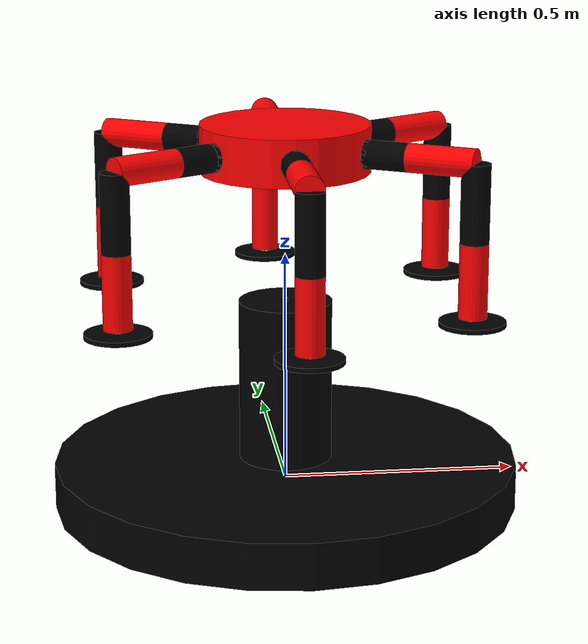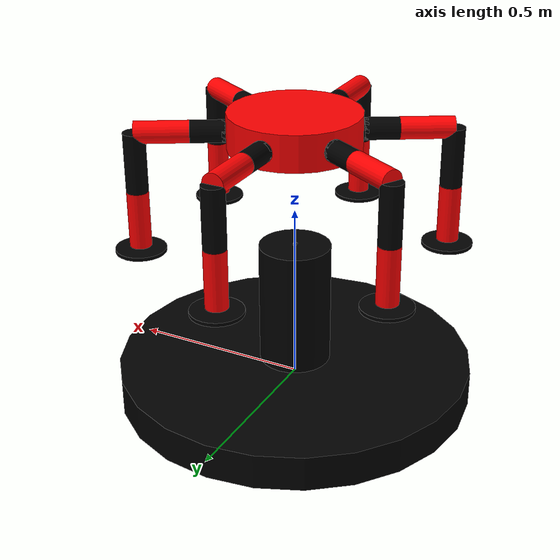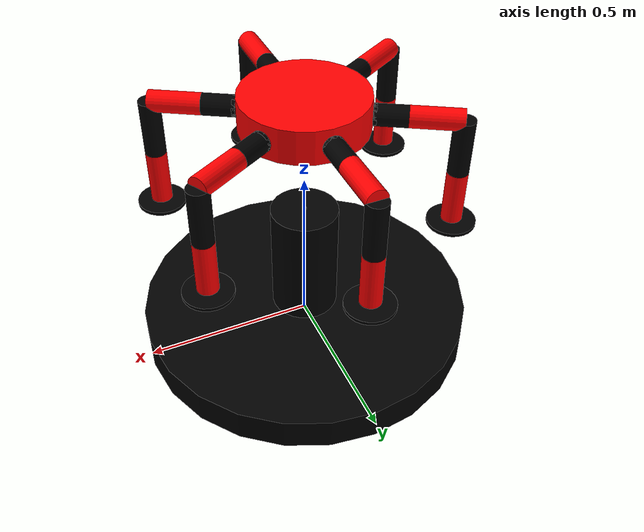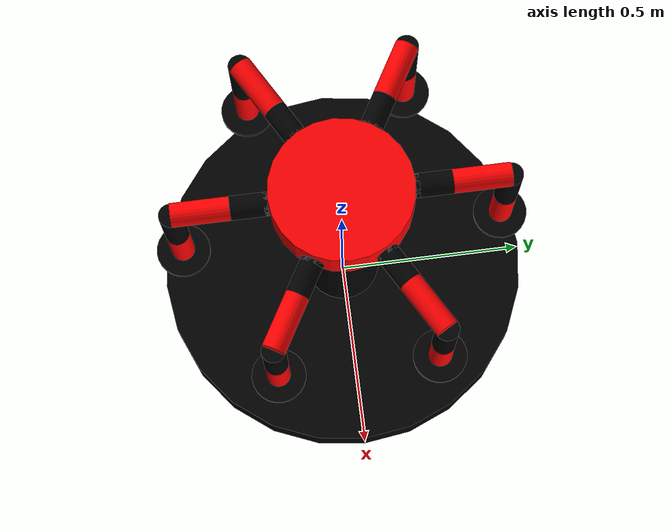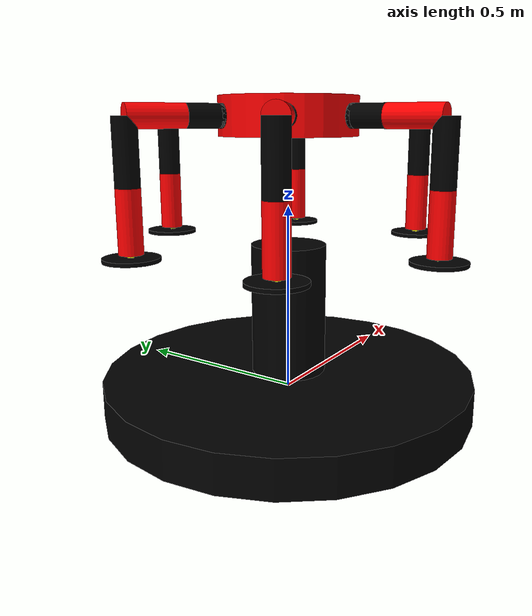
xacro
<?xml version="1.0"?>
<robot
  xmlns:xacro="http://www.ros.org/wiki/xacro" name="support_hexapod">
  <xacro:include filename="$(find hexapod_gazebo_description)/urdf/hexapod_gazebo.xacro" />
  <xacro:include filename="$(find hexapod_gazebo_description)/urdf/support.urdf" />

<joint name="support" type="fixed">
  <axis xyz="0 0 1"/>
  <parent link="support_body"/>
  <child link="base_link"/>
  <origin rpy="0 0 0" xyz="0 0 0.4"/>
</joint>

</robot>

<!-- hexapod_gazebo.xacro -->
<robot xmlns:xacro="http://www.ros.org/wiki/xacro" name="hexapod">

  <xacro:property name="M_PI" value="3.1415926535897931"/>
  <xacro:property name="gen3" value="1.7320508075689"/>

  <xacro:property name="bodyradius" value="0.1800"/>
  <xacro:property name="bodylength" value="0.1000"/>
  <xacro:property name="bodymass" value="3"/>

  <xacro:property name="bridgelength" value="0.01"/>
  <xacro:property name="bridgeradius" value="0.03"/>
  <xacro:property name="bridgemass" value="0.5"/>

  <xacro:property name="rolllength" value="0.093"/>
  <xacro:property name="rollradius" value="0.03"/>
  <xacro:property name="rollmass" value="${rolllength*5}"/>

  <xacro:property name="pitch1length" value="0.14489"/>
  <xacro:property name="pitch1radius" value="0.03"/>
  <xacro:property name="pitch1mass" value="${pitch1length*5}"/>

  <xacro:property name="pitch2length" value="0.164"/>
  <xacro:property name="pitch2radius" value="0.03"/>
  <xacro:property name="pitch2mass" value="${pitch2length*5}"/>

  <xacro:property name="pitch3length" value="0.157"/>
  <xacro:property name="pitch3radius" value="0.03"/>
  <xacro:property name="pitch3mass" value="${pitch3length*5}"/>

  <xacro:property name="sticklength" value="0.01"/>
  <xacro:property name="stickradius" value="0.07"/>
  <xacro:property name="stickmass" value="1"/>

  <xacro:property name="damping" value="1"/>

<link name="base_link">
  <visual>
   <geometry>
      <box size="0.01 0.01 0.01"/>
   </geometry>
   <material name="black">
     <color rgba="0 0 0 100"/>
   </material>
  </visual>
</link>

<!--body-->
<link name="body">
<visual>
   <geometry>
     <cylinder length="${bodylength}" radius="${bodyradius}"/>
   </geometry>
   <material name="Red">
     <color rgba="255 0 0 100"/>
   </material>
  </visual>

 <collision>
      <origin xyz="0 0 0" rpy="0 0 0"/>
      <geometry>
     <cylinder length="${bodylength}" radius="${bodyradius}"/>
      </geometry>
    </collision>

<inertial>
      <origin xyz="0 0 0" rpy="0 0 0"/>
      <mass value="${bodymass}"/>
      <inertia
        ixx="0" ixy="0.0" ixz="0.0"
        iyy="0" iyz="0.0"
        izz="0"/>
    </inertial>
</link>
  <gazebo reference="body">
    <material>Gazebo/Red</material>
  </gazebo>

<joint name="body" type="fixed">
  <axis xyz="0 0 1"/>
  <parent link="base_link"/>
  <child link="body"/>
  <origin rpy="0 0 0" xyz="0 0 ${pitch2length+pitch3length+sticklength}"/>
</joint>

  <xacro:macro name="leg" params="leg r p ry x y">

<link name="${leg}_bridge">
  <visual>
    <origin xyz="${bridgelength/2} 0 0" rpy="0 ${M_PI/2} 0"/>
    <geometry>
      <cylinder length="${bridgelength}" radius="${bridgeradius}"/>
    </geometry>
    <material name="Black">
      <color rgba="0 0 0 1"/>
    </material>
  </visual>
  <inertial>
    <origin xyz="0 0 0" rpy="0 0 0"/>
      <mass value="${bridgemass}"/>
      <inertia
        ixx="0" ixy="0.0" ixz="0.0"
        iyy="0" iyz="0.0"
        izz="0"/>
    </inertial>
  <collision>
    <origin xyz="${bridgelength/2} 0 0" rpy="0 ${M_PI/2} 0"/>
    <geometry>
      <cylinder length="${bridgelength}" radius="${bridgeradius}"/>
    </geometry>
  </collision>
</link>
  <gazebo reference="${leg}_bridge">
    <material>Gazebo/Black</material>
  </gazebo>

<joint name="${leg}_bridge" type="fixed">
  <axis xyz="0 0 1"/>
  <parent link="body"/>
  <child link="${leg}_bridge"/>
  <origin rpy="${r} ${p} ${ry}" xyz="${x} ${y} 0"/>
</joint>

<link name="${leg}_roll">
  <visual>
    <origin xyz="${rolllength/2} 0 0" rpy="0 ${M_PI/2} 0"/>
    <geometry>
      <cylinder length="${rolllength}" radius="${rollradius}"/>
    </geometry>
    <material name="Black">
      <color rgba="0 0 0 1"/>
    </material>
  </visual>
  <inertial>
    <origin xyz="0 0 0" rpy="0 0 0"/>
      <mass value="${rollmass}"/>
      <inertia
        ixx="${0.5*rollmass*rollradius*rollradius}" ixy="0.0" ixz="0.0"
        iyy="${(3*rollmass*rollradius*rollradius+4*rollmass*rolllength*rolllength)/12}" iyz="0.0"
        izz="${(3*rollmass*rollradius*rollradius+4*rollmass*rolllength*rolllength)/12}"/>
    </inertial>
  <collision>
    <origin xyz="${rolllength/2} 0 0" rpy="0 ${M_PI/2} 0"/>
    <geometry>
      <cylinder length="${rolllength}" radius="${rollradius}"/>
    </geometry>
  </collision>
</link>
  <gazebo reference="${leg}_roll">
    <material>Gazebo/Black</material>
  </gazebo>

<joint name="${leg}_roll" type="revolute">
  <axis xyz="0 0 1"/>
  <limit effort="300" lower="-${M_PI/2}" upper="${M_PI/2}" velocity="1"/>
  <dynamics damping="${damping}"/>
  <parent link="${leg}_bridge"/>
  <child link="${leg}_roll"/>
  <origin rpy="0 0 0" xyz="0 0 0"/>
</joint>

<link name="${leg}_pitch1">
  <visual>
    <origin xyz="${pitch1length/2} 0 0" rpy="0 ${M_PI/2} 0"/>
    <geometry>
      <cylinder length="${pitch1length}" radius="${pitch1radius}"/>
    </geometry>
    <material name="Red">
      <color rgba="255 0 0 1"/>
    </material>
  </visual>
 <inertial>
    <origin xyz="0 0 0" rpy="0 0 0"/>
      <mass value="${pitch1mass}"/>
      <inertia
        ixx="${0.5*pitch1mass*pitch1radius*pitch1radius}" ixy="0.0" ixz="0.0"
        iyy="${(3*pitch1mass*pitch1radius*pitch1radius+4*pitch1mass*pitch1length*pitch1length)/12}" iyz="0.0"
        izz="${(3*pitch1mass*pitch1radius*pitch1radius+4*pitch1mass*pitch1length*pitch1length)/12}"/>
    </inertial>
  <collision>
    <origin xyz="${pitch1length/2} 0 0" rpy="0 ${M_PI/2} 0"/>
    <geometry>
      <cylinder length="${pitch1length}" radius="${pitch1radius}"/>
    </geometry>
  </collision>
</link>
  <gazebo reference="${leg}_pitch1">
    <material>Gazebo/Red</material>
  </gazebo>
<joint name="${leg}_pitch1" type="revolute">
  <axis xyz="0 0 1"/>
  <limit effort="300" lower="-${M_PI/2*3}" upper="${M_PI/2}" velocity="1"/>
  <dynamics damping="${damping}"/>
  <parent link="${leg}_roll"/>
  <child link="${leg}_pitch1"/>
  <origin rpy="${M_PI/2} 0 0" xyz="${rolllength} 0 0"/>
</joint>

<link name="${leg}_pitch2">
  <visual>
    <origin xyz="${pitch2length/2} 0 0" rpy="${M_PI/2} 0 ${M_PI/2}"/>
    <geometry>
      <cylinder length="${pitch2length}" radius="${pitch2radius}"/>
    </geometry>
    <material name="black">
      <color rgba="0 0 0 1"/>
    </material>
  </visual>
 <inertial>
    <origin xyz="${pitch2length} 0 0" rpy="0 0 0"/>
      <mass value="${pitch2mass}"/>
      <inertia
        ixx="${0.5*pitch2mass*pitch2radius*pitch2radius}" ixy="0.0" ixz="0.0"
        iyy="${(3*pitch2mass*pitch2radius*pitch2radius+4*pitch2mass*pitch2length*pitch2length)/12}" iyz="0.0"
        izz="${(3*pitch2mass*pitch2radius*pitch2radius+4*pitch2mass*pitch2length*pitch2length)/12}"/>
    </inertial>
  <collision>
    <origin xyz="${pitch2length/2} 0 0" rpy="${M_PI/2} 0 ${M_PI/2}"/>
    <geometry>
      <cylinder length="${pitch2length}" radius="${pitch2radius}"/>
    </geometry>
  </collision>
</link>
  <gazebo reference="${leg}_pitch2">
    <material>Gazebo/Black</material>
    <mu1 value="200"/>
    <mu2 value="200"/>
  </gazebo>
<joint name="${leg}_pitch2" type="revolute">
  <axis xyz="0 0 1"/>
  <limit effort="300" lower="-${M_PI*2/3}" upper="${M_PI}" velocity="1"/>
  <dynamics damping="${damping}"/>
  <parent link="${leg}_pitch1"/>
  <child link="${leg}_pitch2"/>
  <origin rpy="0 0 -${M_PI/2}" xyz="${pitch1length} 0 0"/>
</joint>

<link name="${leg}_pitch3">
  <visual>
    <origin xyz="${pitch3length/2} 0 0" rpy="${M_PI/2} 0 ${M_PI/2}"/>
    <geometry>
      <cylinder length="${pitch3length}" radius="${pitch3radius}"/>
    </geometry>
    <material name="Red">
      <color rgba="255 0 0 1"/>
    </material>
  </visual>
 <inertial>
    <origin xyz="0 0 0" rpy="0 0 0"/>
      <mass value="${pitch3mass}"/>
      <inertia
        ixx="${0.5*pitch3mass*pitch3radius*pitch3radius}" ixy="0.0" ixz="0.0"
        iyy="${(3*pitch3mass*pitch3radius*pitch3radius+4*pitch3mass*pitch3length*pitch3length)/12}" iyz="0.0"
        izz="${(3*pitch3mass*pitch3radius*pitch3radius+4*pitch3mass*pitch3length*pitch3length)/12}"/>
    </inertial>
  <collision>
    <origin xyz="${pitch3length/2} 0 0" rpy="${M_PI/2} 0 ${M_PI/2}"/>
    <geometry>
      <cylinder length="${pitch3length}" radius="${pitch3radius}"/>
    </geometry>
  </collision>
</link>
  <gazebo reference="${leg}_pitch3">
    <material>Gazebo/Red</material>
    <mu1 value="200"/>
    <mu2 value="200"/>
  </gazebo>
<joint name="${leg}_pitch3" type="revolute">
  <axis xyz="0 0 1"/>
  <limit effort="300" lower="-${M_PI*2/3}" upper="${M_PI/2}" velocity="1"/>
  <dynamics damping="${damping}"/>
  <parent link="${leg}_pitch2"/>
  <child link="${leg}_pitch3"/>
  <origin rpy="0 0 0" xyz="${pitch2length} 0 0"/>
</joint>

<!--stick-->

<link name="${leg}_stick1">
  <visual>
    <origin xyz="0 0 0" rpy="0 0 0"/>
    <geometry>
      <cylinder length="0.01" radius="0.01"/>
    </geometry>
    <material name="yellow">
      <color rgba="255 255 0 1"/>
    </material>
  </visual>
 <inertial>
    <origin xyz="0 0 0" rpy="0 0 0"/>
      <mass value="${stickmass}"/>
      <inertia
        ixx="${(3*stickmass*stickradius*stickradius+4*stickmass*sticklength*sticklength)/12}" ixy="0.0" ixz="0.0"
        iyy="${(3*stickmass*stickradius*stickradius+4*stickmass*sticklength*sticklength)/12}" iyz="0.0"
        izz="${0.5*stickmass*stickradius*stickradius}"/>
    </inertial>
  <collision>
    <origin xyz="0 0 0" rpy="0 0 0"/>
    <geometry>
      <cylinder length="0.01" radius="0.01"/>
    </geometry>
  </collision>
</link>
<joint name="${leg}_stick1" type="revolute">
  <limit effort="300" lower="-${M_PI/180}" upper="${M_PI/180}" velocity="1"/>
  <dynamics damping="${damping}"/>
  <axis xyz="1 0 0"/>
  <parent link="${leg}_pitch3"/>
  <child link="${leg}_stick1"/>
  <origin rpy="0 ${M_PI/2} 0" xyz="${pitch2length+sticklength/2} 0 0"/>
</joint>
  <gazebo reference="${leg}_stick1">
    <material>Gazebo/Black</material>
    <mu1 value="10000"/>
    <mu2 value="10000"/>
  </gazebo>

<link name="${leg}_stick3">
  <visual>
    <origin xyz="0 0 0" rpy="0 0 0"/>
    <geometry>
      <cylinder length="${sticklength}" radius="${stickradius}"/>
    </geometry>
    <material name="Black">
      <color rgba="0 0 0 1"/>
    </material>
  </visual>
 <inertial>
    <origin xyz="0 0 0" rpy="0 0 0"/>
      <mass value="${stickmass}"/>
      <inertia
        ixx="${(3*stickmass*stickradius*stickradius+4*stickmass*sticklength*sticklength)/12}" ixy="0.0" ixz="0.0"
        iyy="${(3*stickmass*stickradius*stickradius+4*stickmass*sticklength*sticklength)/12}" iyz="0.0"
        izz="${0.5*stickmass*stickradius*stickradius}"/>
    </inertial>
  <collision>
    <origin xyz="0 0 0" rpy="0 0 0"/>
    <geometry>
      <cylinder length="${sticklength}" radius="${stickradius}"/>
    </geometry>
  </collision>
</link>
<joint name="${leg}_stick3" type="revolute">
  <limit effort="300" lower="-${M_PI/180}" upper="${M_PI/180}" velocity="1"/>
  <dynamics damping="${damping}"/>
  <axis xyz="0 1 0"/>
  <parent link="${leg}_stick1"/>
  <child link="${leg}_stick3"/>
  <origin rpy="0 0 0" xyz="0 0 0"/>
</joint>
  <gazebo reference="${leg}_stick3">
    <material>Gazebo/Black</material>
    <mu1 value="10000"/>
    <mu2 value="10000"/>
  </gazebo>

<!--motor-->
<transmission name="${leg}_tran1">
    <type>transmission_interface/SimpleTransmission</type>
    <joint name="${leg}_roll">
      <hardwareInterface>EffortJointInterface</hardwareInterface>
    </joint>
    <actuator name="${leg}_motor1">
      <hardwareInterface>EffortJointInterface</hardwareInterface>
      <mechanicalReduction>1</mechanicalReduction>
    </actuator>
  </transmission>

<transmission name="${leg}_tran2">
    <type>transmission_interface/SimpleTransmission</type>
    <joint name="${leg}_pitch1">
      <hardwareInterface>EffortJointInterface</hardwareInterface>
    </joint>
    <actuator name="${leg}_motor2">
      <hardwareInterface>EffortJointInterface</hardwareInterface>
      <mechanicalReduction>1</mechanicalReduction>
    </actuator>
  </transmission>

<transmission name="${leg}_tran3">
    <type>transmission_interface/SimpleTransmission</type>
    <joint name="${leg}_pitch2">
      <hardwareInterface>EffortJointInterface</hardwareInterface>
    </joint>
    <actuator name="${leg}_motor3">
      <hardwareInterface>EffortJointInterface</hardwareInterface>
      <mechanicalReduction>1</mechanicalReduction>
    </actuator>
  </transmission>

<transmission name="${leg}_tran4">
    <type>transmission_interface/SimpleTransmission</type>
    <joint name="${leg}_pitch3">
      <hardwareInterface>EffortJointInterface</hardwareInterface>
    </joint>
    <actuator name="${leg}_motor4">
      <hardwareInterface>EffortJointInterface</hardwareInterface>
      <mechanicalReduction>1</mechanicalReduction>
    </actuator>
  </transmission>

<transmission name="${leg}_tran5">
    <type>transmission_interface/SimpleTransmission</type>
    <joint name="${leg}_stick1">
      <hardwareInterface>EffortJointInterface</hardwareInterface>
    </joint>
    <actuator name="${leg}_motor5">
      <hardwareInterface>EffortJointInterface</hardwareInterface>
      <mechanicalReduction>1</mechanicalReduction>
    </actuator>
  </transmission>
<transmission name="${leg}_tran6">
    <type>transmission_interface/SimpleTransmission</type>
    <joint name="${leg}_stick3">
      <hardwareInterface>EffortJointInterface</hardwareInterface>
    </joint>
    <actuator name="${leg}_motor6">
      <hardwareInterface>EffortJointInterface</hardwareInterface>
      <mechanicalReduction>1</mechanicalReduction>
    </actuator>
  </transmission>

  <gazebo>
     <plugin name="joint_state_publisher" filename="libgazebo_ros_joint_state_publisher.so">
       <jointName>${leg}_roll, ${leg}_pitch1, ${leg}_pitch2,${leg}_pitch3, ${leg}_stick1, ${leg}_stick3</jointName>
     </plugin>
  </gazebo>
</xacro:macro>

  <gazebo>
     <plugin name="gazebo_ros_control" filename="libgazebo_ros_control.so">
       <robotNamespace>/hexapod</robotNamespace>
     </plugin>
  </gazebo>

<xacro:leg leg="leg1" r="0" p="0" ry="${M_PI/6}" x="${bodyradius/2*gen3}" y="${bodyradius/2}"/>
<xacro:leg leg="leg2" r="0" p="0" ry="${M_PI/2}" x="0" y="${bodyradius}"/>
<xacro:leg leg="leg3" r="0" p="0" ry="${M_PI/6*5}" x="-${bodyradius/2*gen3}" y="${bodyradius/2}"/>
<xacro:leg leg="leg4" r="0" p="0" ry="-${M_PI/6*5}" x="-${bodyradius/2*gen3}" y="-${bodyradius/2}"/>
<xacro:leg leg="leg5" r="0" p="0" ry="-${M_PI/2}" x="0" y="-${bodyradius}"/>
<xacro:leg leg="leg6" r="0" p="0" ry="-${M_PI/6}" x="${bodyradius/2*gen3}" y="-${bodyradius/2}"/>

</robot>

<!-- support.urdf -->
<robot
     xmlns:xacro="http://www.ros.org/wiki/xacro" name="support">

<link name="support_body">

<visual>
      <origin xyz="0 0 0.2" rpy="0 0 0"/>
   <geometry>
     <cylinder length="0.4" radius="0.1"/>
   </geometry>
   <material name="black">
     <color rgba="0 0 0 100"/>
   </material>
  </visual>

 <collision>
      <origin xyz="0 0 0.2" rpy="0 0 0"/>
      <geometry>
     <cylinder length="0.4" radius="0.1"/>
      </geometry>
    </collision>

<inertial>
      <origin xyz="0 0 0" rpy="0 0 0"/>
      <mass value="10"/>
      <inertia
        ixx="0.01" ixy="0.0" ixz="0.0"
        iyy="0.01" iyz="0.0"
        izz="0.01"/>
    </inertial>
</link>
  <gazebo reference="support_body">
    <material>Gazebo/Blue</material>
    <mu1 value="2000"/>
    <mu2 value="2000"/>
  </gazebo>

<link name="support_body2">

<visual>
      <origin xyz="0 0 0" rpy="0 0 0"/>
   <geometry>
     <cylinder length="0.1" radius="0.5"/>
   </geometry>
   <material name="black">
     <color rgba="0 0 0 100"/>
   </material>
  </visual>

 <collision>
      <origin xyz="0 0 0" rpy="0 0 0"/>
      <geometry>
     <cylinder length="0.1" radius="0.5"/>
      </geometry>
    </collision>

<inertial>
      <origin xyz="0 0 0" rpy="0 0 0"/>
      <mass value="10"/>
      <inertia
        ixx="0.01" ixy="0.0" ixz="0.0"
        iyy="0.01" iyz="0.0"
        izz="0.01"/>
    </inertial>
</link>
  <gazebo reference="support_body2">
    <material>Gazebo/Blue</material>
    <mu1 value="2000"/>
    <mu2 value="2000"/>
  </gazebo>

<joint name="support_body2" type="fixed">
  <axis xyz="0 0 1"/>
  <parent link="support_body"/>
  <child link="support_body2"/>
  <origin rpy="0 0 0" xyz="0 0 0"/>
</joint>

</robot>
